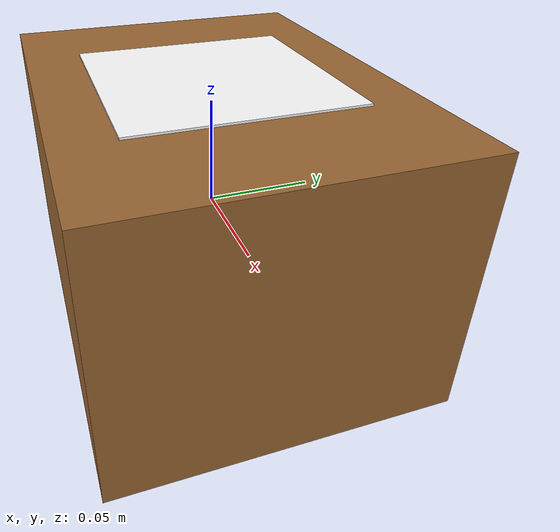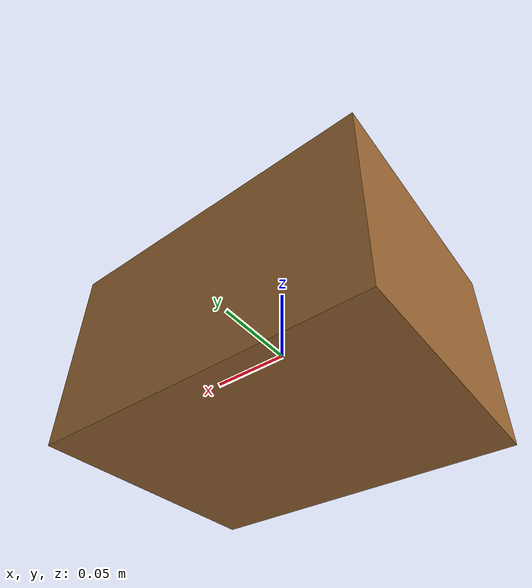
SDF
<?xml version="1.0" ?>
<sdf version="1.8">
  <model name="product_box">
    <link name="link">
      <inertial>
        <mass>0.1</mass>
        <inertia>
          <ixx>0.0003</ixx><ixy>0</ixy><ixz>0</ixz>
          <iyy>0.00045</iyy><iyz>0</iyz>
          <izz>0.0005</izz>
        </inertia>
      </inertial>
      <collision name="collision">
        <geometry><box><size>0.2 0.15 0.12</size></box></geometry>
        <surface>
          <friction>
            <ode>
              <mu>100.0</mu>
              <mu2>100.0</mu2>
            </ode>
          </friction>
          <contact>
            <ode>
              <kp>1e6</kp>
              <kd>1.0</kd>
              <min_depth>0.002</min_depth>
            </ode>
          </contact>
        </surface>
      </collision>
      <visual name="visual">
        <geometry><box><size>0.2 0.15 0.12</size></box></geometry>
        <material><ambient>0.6 0.4 0.2 1</ambient><diffuse>0.6 0.4 0.2 1</diffuse></material>
      </visual>
      <!-- Top marker stays visible above the conveyor side wall. -->
      <visual name="tag_visual">
        <pose>0 0 0.061 0 0 0</pose>
        <geometry><box><size>0.10 0.10 0.001</size></box></geometry>
        <material>
          <ambient>1 1 1 1</ambient>
          <diffuse>1 1 1 1</diffuse>
          <pbr>
            <metal>
              <albedo_map>model://product_box/materials/textures/aruco_1.png</albedo_map>
              <roughness>0.8</roughness>
              <metalness>0.0</metalness>
            </metal>
          </pbr>
        </material>
      </visual>
    </link>
  </model>
</sdf>
